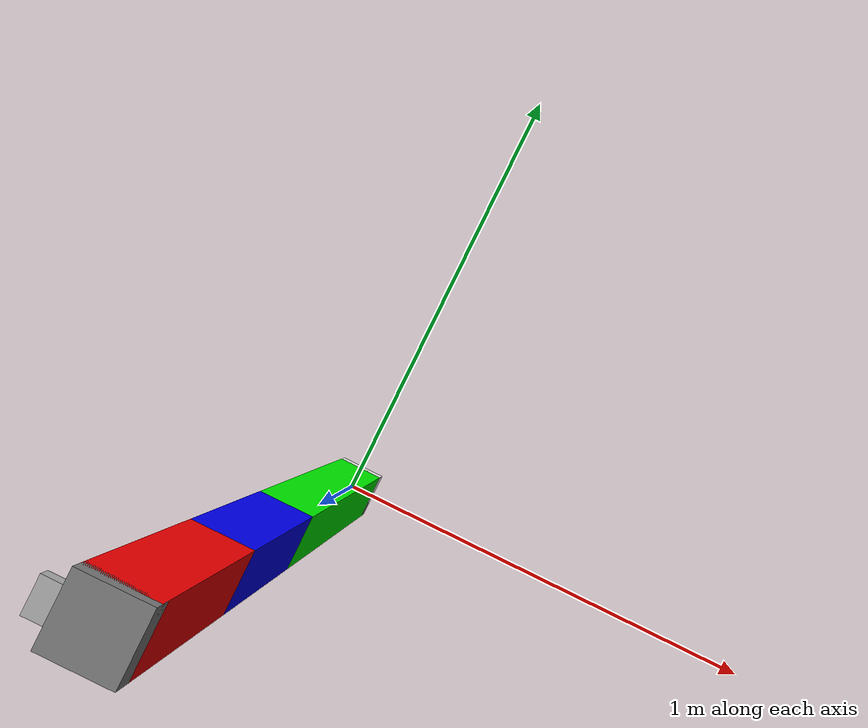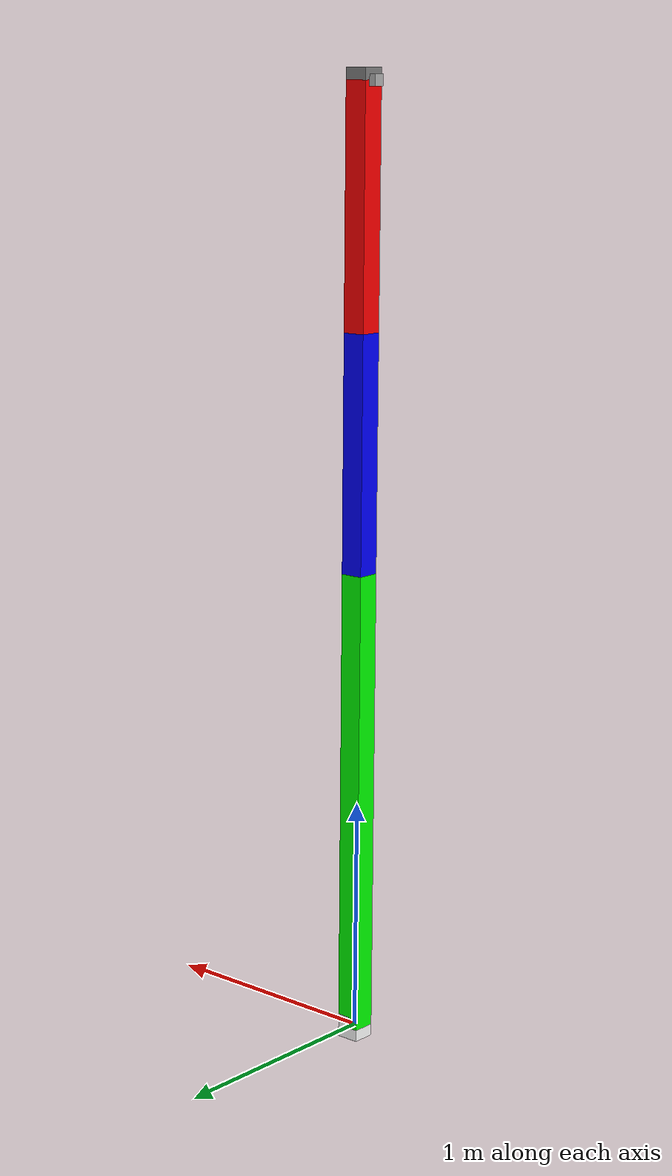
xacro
<?xml version="1.0"?>
<robot
  xmlns:xacro="http://www.ros.org/wiki/xacro"
  xmlns:sensor="http://playerstage.sourceforge.net/gazebo/xmlschema/#sensor"
  name="simple_arm">
  <gazebo>
    <plugin filename="libign_ros2_control-system.so" name="ign_ros2_control::IgnitionROS2ControlPlugin">
      <parameters>$(find simple_arm_camera)/config/simple_arm_controllers.yaml </parameters>
    </plugin>
    <plugin filename="libgazebo_ros2_control.so" name="gazebo_ros2_control">
      <robot_sim_type>gazebo_ros2_control/GazeboSystem</robot_sim_type>
      <parameters>$(find simple_arm_camera)/config/simple_arm_controllers.yaml</parameters>
    </plugin>
    <plugin
      filename="ignition-gazebo-sensors-system"
      name="ignition::gazebo::systems::Sensors">
      <render_engine>ogre2</render_engine>
    </plugin>
    <plugin
      filename="ignition-gazebo-scene-broadcaster-system"
      name="ignition::gazebo::systems::SceneBroadcaster">
    </plugin>
  </gazebo>

  <ros2_control name="simple_arm_ros2_control" type="system">
    <hardware>
      <plugin>ign_ros2_control/IgnitionSystem</plugin>
      <plugin>gz_ros2_control/GazeboSimSystem</plugin>
    </hardware>
    <joint name="joint1">
      <command_interface name="position">
        <param name="min">-2</param>
        <param name="max">2</param>
      </command_interface>
      <state_interface name="position"/>
      <state_interface name="velocity"/>
      <state_interface name="effort"/>
    </joint>
    <joint name="joint2">
      <command_interface name="position">
        <param name="min">-2</param>
        <param name="max">2</param>
      </command_interface>
      <state_interface name="position"/>
      <state_interface name="velocity"/>
      <state_interface name="effort"/>
    </joint>
    <joint name="joint3">
      <command_interface name="position">
        <param name="min">-2</param>
        <param name="max">2</param>
      </command_interface>
      <state_interface name="position"/>
      <state_interface name="velocity"/>
      <state_interface name="effort"/>
    </joint>
  </ros2_control>

  <xacro:property name="mass" value="1"/>
  <xacro:property name="width" value="0.1"/>
  <xacro:property name="height" value="1"/>
  <xacro:property name="height_link1" value="${height*2}"/>

  <link name="world"/>

  <joint name="fixed_base" type="fixed">
    <parent link="world"/>
    <child link="base_link"/>
    <origin xyz="0 0 0" rpy="0 0 0"/>
  </joint>

  <link name="base_link"/>

  <joint name="joint0" type="fixed">
    <parent link="base_link"/>
    <child link="link0"/>
    <origin xyz="0 0 0" rpy="0 0 0"/>
  </joint>

  <link name="link0">
    <visual>
      <geometry>
        <box size="${width} ${width} ${width}"/>
      </geometry>
      <material name="white">
        <color rgba="1 1 1 1"/>
      </material>
    </visual>
    <inertial>
      <origin xyz="0 0 ${width/2}" rpy="0 0 0"/>
      <mass value="${mass}"/>
      <inertia
        ixx="${mass/12.0 * (width*width + width*width)}" ixy="0.0" ixz="0.0"
        iyy="${mass/12.0 * (width*width + width*width)}" iyz="0.0"
        izz="${mass/12.0 * (width*width + width*width)}"/>
    </inertial>
  </link>

  <joint name="joint1" type="revolute">
    <parent link="link0"/>
    <child link="link1"/>
    <origin xyz="0 0 0" rpy="0 0 0"/>
    <axis xyz="0 1 0"/>
    <dynamics damping="0.7"/>
    <limit effort="100" velocity="1.0" upper="1.6" lower="-1.6"/>
  </joint>

  <link name="link1">
    <visual>
      <origin xyz="0 0 ${height_link1/2}" rpy="0 0 0"/>
      <geometry>
        <box size="${width} ${width} ${height_link1}"/>
      </geometry>
      <material name="green">
        <color rgba="0 1 0 1"/>
      </material>
    </visual>
    <inertial>
      <origin xyz="0 0 ${height/2}" rpy="0 0 0"/>
      <mass value="${mass}"/>
      <inertia
        ixx="${mass/12.0 * (width*width + height_link1*height_link1)}" ixy="0.0" ixz="0.0"
        iyy="${mass/12.0 * (height_link1*height_link1 + width*width)}" iyz="0.0"
        izz="${mass/12.0 * (width*width + width*width)}"/>
    </inertial>
  </link>

  <joint name="joint2" type="revolute">
    <parent link="link1"/>
    <child link="link2"/>
    <origin xyz="0 0 ${height_link1}" rpy="0 0 0"/>
    <axis xyz="0 1 0"/>
    <dynamics damping="0.7"/>
    <limit effort="100" velocity="1.0" upper="1.6" lower="-1.6"/>
  </joint>

  <link name="link2">
    <visual>
      <origin xyz="0 0 ${height/2}" rpy="0 0 0"/>
      <geometry>
        <box size="${width} ${width} ${height}"/>
      </geometry>
      <material name="blue">
        <color rgba="0 0 1 1"/>
      </material>
    </visual>
    <inertial>
      <origin xyz="0 0 ${height/2}" rpy="0 0 0"/>
      <mass value="${mass}"/>
      <inertia
        ixx="${mass/12.0 * (width*width + height*height)}" ixy="0.0" ixz="0.0"
        iyy="${mass/12.0 * (height*height + width*width)}" iyz="0.0"
        izz="${mass/12.0 * (width*width + width*width)}"/>
    </inertial>
  </link>

  <joint name="joint3" type="revolute">
    <parent link="link2"/>
    <child link="link3"/>
    <origin xyz="0 0 ${height}" rpy="0 0 0"/>
    <axis xyz="0 1 0"/>
    <dynamics damping="0.7"/>
    <limit effort="100" velocity="1.0" upper="1.6" lower="-1.6"/>
  </joint>

  <link name="link3">
    <visual>
      <origin xyz="0 0 ${height/2}" rpy="0 0 0"/>
      <geometry>
        <box size="${width} ${width} ${height}"/>
      </geometry>
      <material name="red">
        <color rgba="1 0 0 1"/>
      </material>
    </visual>
    <inertial>
      <origin xyz="0 0 ${height/2}" rpy="0 0 0"/>
      <mass value="${mass}"/>
      <inertia
        ixx="${mass/12.0 * (width*width + height*height)}" ixy="0.0" ixz="0.0"
        iyy="${mass/12.0 * (height*height + width*width)}" iyz="0.0"
        izz="${mass/12.0 * (width*width + width*width)}"/>
    </inertial>
  </link>

  <joint name="tool_joint" type="fixed">
    <origin xyz="0 0 1" rpy="0 0 0"/>
    <parent link="link3"/>
    <child link="tool_link"/>
  </joint>

  <link name="tool_link">
    <visual>
      <geometry>
        <box size="0.1 0.1 0.1"/>
      </geometry>
      <material name="gray">
        <color rgba="0.5 0.5 0.5 1"/>
      </material>
    </visual>
  </link>

  <joint name="camera_joint" type="fixed">
    <origin xyz="0 0 0" rpy="-1.57 -1.57 1.57"/>
    <parent link="tool_link"/>
    <child link="camera_link"/>
  </joint>

  <link name="camera_link">
    <visual>
      <origin xyz="0 0 0.03" rpy="0 0 0"/>
      <geometry>
        <box size="0.05 0.05 0.1"/>
      </geometry>
    </visual>
    <material name="gray"/>
  </link>

  <joint name="camera_optical_joint" type="fixed">
    <origin xyz="0 0 0" rpy="0 0 0"/>
    <parent link="camera_link"/>
    <child link="camera_link_optical"/>
  </joint>

  <link name="camera_link_optical"></link>

  <gazebo reference="camera_link">
    <sensor name="camera_link" type="camera">
      <update_rate>10.0</update_rate>
      <always_on>true</always_on>
      <ignition_frame_id>camera_link</ignition_frame_id>
      <pose>0 0 0 0 0 0</pose>
      <visualize>true</visualize>
      <topic>/image_raw</topic>
      <camera name="camera">
        <horizontal_fov>1.3</horizontal_fov>
        <image>
          <width>600</width>
          <height>600</height>
          <format>R8G8B8</format>
        </image>
        <clip>
          <near>0.02</near>
          <far>300</far>
        </clip>
      </camera>
    </sensor>
  </gazebo>

</robot>
